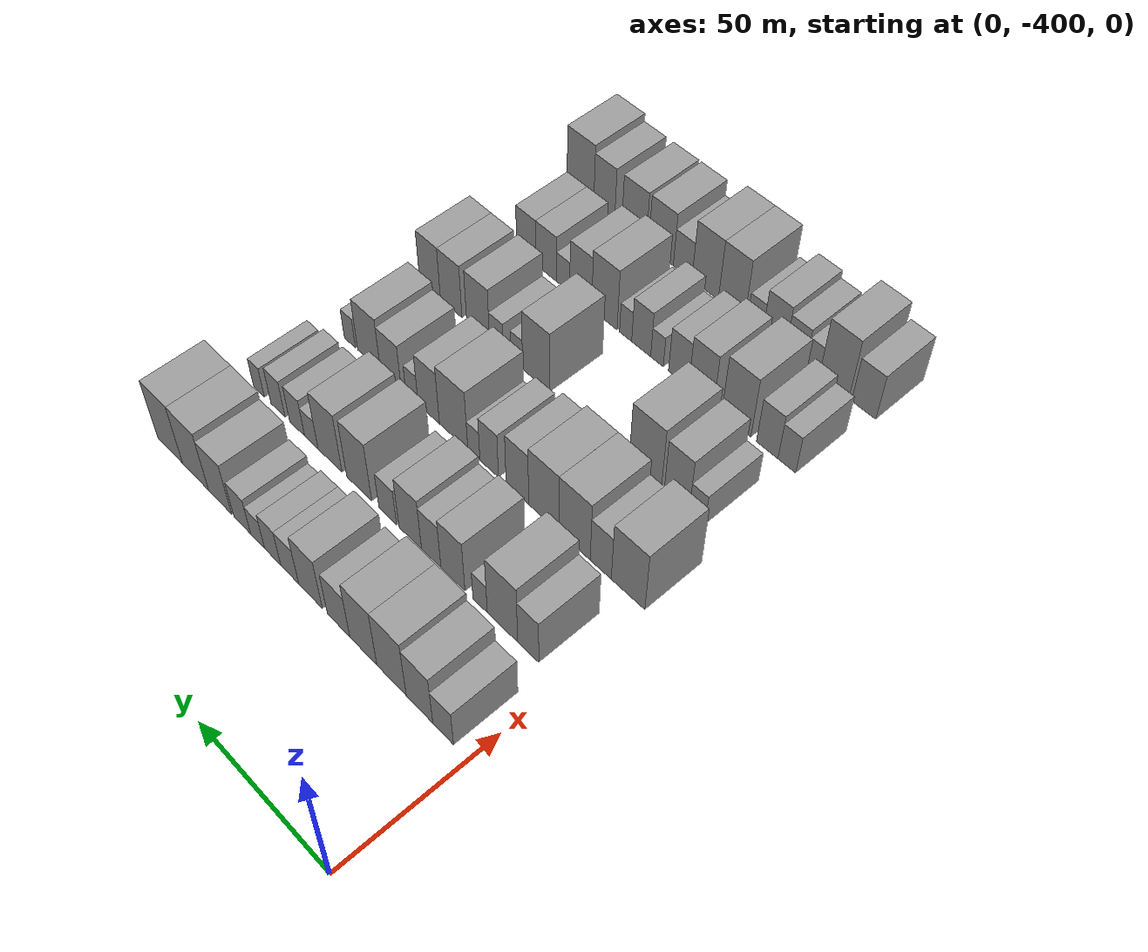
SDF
<sdf version="1.6">
 <world name="default">
  <model name="building_13">
   <static>1</static>
   <pose>50.0000 -391.0221 0 0.000000 0.000000 0.000000</pose>
   <link name="link">
    <pose>0 0 7.50 0 0 0</pose>
    <collision name="collision"><geometry><box><size>20.0000 7.4388 15.0000</size></box></geometry></collision>
    <visual name="visual">
     <cast_shadows>0</cast_shadows>
     <geometry><box><size>20.0000 7.4388 15.0000</size></box></geometry>
     <material>
      <script>
       <uri>model://grey_wall/materials/scripts</uri>
       <uri>model://grey_wall/materials/textures</uri>
       <name>vrc/grey_wall</name>
      </script>
     </material>
    </visual>
   </link>
  </model>
  <model name="building_14">
   <static>1</static>
   <pose>50.0000 -382.4483 0 0.000000 0.000000 0.000000</pose>
   <link name="link">
    <pose>0 0 10.50 0 0 0</pose>
    <collision name="collision"><geometry><box><size>20.0000 9.7088 21.0000</size></box></geometry></collision>
    <visual name="visual">
     <cast_shadows>0</cast_shadows>
     <geometry><box><size>20.0000 9.7088 21.0000</size></box></geometry>
     <material>
      <script>
       <uri>model://grey_wall/materials/scripts</uri>
       <uri>model://grey_wall/materials/textures</uri>
       <name>vrc/grey_wall</name>
      </script>
     </material>
    </visual>
   </link>
  </model>
  <model name="building_15">
   <static>1</static>
   <pose>50.0000 -372.0800 0 0.000000 0.000000 0.000000</pose>
   <link name="link">
    <pose>0 0 12.00 0 0 0</pose>
    <collision name="collision"><geometry><box><size>20.0000 11.0279 24.0000</size></box></geometry></collision>
    <visual name="visual">
     <cast_shadows>0</cast_shadows>
     <geometry><box><size>20.0000 11.0279 24.0000</size></box></geometry>
     <material>
      <script>
       <uri>model://grey_wall/materials/scripts</uri>
       <uri>model://grey_wall/materials/textures</uri>
       <name>vrc/grey_wall</name>
      </script>
     </material>
    </visual>
   </link>
  </model>
  <model name="building_16">
   <static>1</static>
   <pose>50.0000 -361.3567 0 0.000000 0.000000 0.000000</pose>
   <link name="link">
    <pose>0 0 12.00 0 0 0</pose>
    <collision name="collision"><geometry><box><size>20.0000 10.4185 24.0000</size></box></geometry></collision>
    <visual name="visual">
     <cast_shadows>0</cast_shadows>
     <geometry><box><size>20.0000 10.4185 24.0000</size></box></geometry>
     <material>
      <script>
       <uri>model://grey_wall/materials/scripts</uri>
       <uri>model://grey_wall/materials/textures</uri>
       <name>vrc/grey_wall</name>
      </script>
     </material>
    </visual>
   </link>
  </model>
  <model name="building_17">
   <static>1</static>
   <pose>50.0000 -351.7194 0 0.000000 0.000000 0.000000</pose>
   <link name="link">
    <pose>0 0 9.00 0 0 0</pose>
    <collision name="collision"><geometry><box><size>20.0000 8.8561 18.0000</size></box></geometry></collision>
    <visual name="visual">
     <cast_shadows>0</cast_shadows>
     <geometry><box><size>20.0000 8.8561 18.0000</size></box></geometry>
     <material>
      <script>
       <uri>model://grey_wall/materials/scripts</uri>
       <uri>model://grey_wall/materials/textures</uri>
       <name>vrc/grey_wall</name>
      </script>
     </material>
    </visual>
   </link>
  </model>
  <model name="building_18">
   <static>1</static>
   <pose>50.0000 -340.5252 0 0.000000 0.000000 0.000000</pose>
   <link name="link">
    <pose>0 0 10.50 0 0 0</pose>
    <collision name="collision"><geometry><box><size>20.0000 9.5323 21.0000</size></box></geometry></collision>
    <visual name="visual">
     <cast_shadows>0</cast_shadows>
     <geometry><box><size>20.0000 9.5323 21.0000</size></box></geometry>
     <material>
      <script>
       <uri>model://grey_wall/materials/scripts</uri>
       <uri>model://grey_wall/materials/textures</uri>
       <name>vrc/grey_wall</name>
      </script>
     </material>
    </visual>
   </link>
  </model>
  <model name="building_19">
   <static>1</static>
   <pose>50.0000 -332.0643 0 0.000000 0.000000 0.000000</pose>
   <link name="link">
    <pose>0 0 7.50 0 0 0</pose>
    <collision name="collision"><geometry><box><size>20.0000 7.3896 15.0000</size></box></geometry></collision>
    <visual name="visual">
     <cast_shadows>0</cast_shadows>
     <geometry><box><size>20.0000 7.3896 15.0000</size></box></geometry>
     <material>
      <script>
       <uri>model://grey_wall/materials/scripts</uri>
       <uri>model://grey_wall/materials/textures</uri>
       <name>vrc/grey_wall</name>
      </script>
     </material>
    </visual>
   </link>
  </model>
  <model name="building_20">
   <static>1</static>
   <pose>50.0000 -324.9953 0 0.000000 0.000000 0.000000</pose>
   <link name="link">
    <pose>0 0 7.50 0 0 0</pose>
    <collision name="collision"><geometry><box><size>20.0000 6.7483 15.0000</size></box></geometry></collision>
    <visual name="visual">
     <cast_shadows>0</cast_shadows>
     <geometry><box><size>20.0000 6.7483 15.0000</size></box></geometry>
     <material>
      <script>
       <uri>model://grey_wall/materials/scripts</uri>
       <uri>model://grey_wall/materials/textures</uri>
       <name>vrc/grey_wall</name>
      </script>
     </material>
    </visual>
   </link>
  </model>
  <model name="building_21">
   <static>1</static>
   <pose>50.0000 -318.6482 0 0.000000 0.000000 0.000000</pose>
   <link name="link">
    <pose>0 0 6.00 0 0 0</pose>
    <collision name="collision"><geometry><box><size>20.0000 5.9460 12.0000</size></box></geometry></collision>
    <visual name="visual">
     <cast_shadows>0</cast_shadows>
     <geometry><box><size>20.0000 5.9460 12.0000</size></box></geometry>
     <material>
      <script>
       <uri>model://grey_wall/materials/scripts</uri>
       <uri>model://grey_wall/materials/textures</uri>
       <name>vrc/grey_wall</name>
      </script>
     </material>
    </visual>
   </link>
  </model>
  <model name="building_22">
   <static>1</static>
   <pose>50.0000 -312.0766 0 0.000000 0.000000 0.000000</pose>
   <link name="link">
    <pose>0 0 7.50 0 0 0</pose>
    <collision name="collision"><geometry><box><size>20.0000 7.1972 15.0000</size></box></geometry></collision>
    <visual name="visual">
     <cast_shadows>0</cast_shadows>
     <geometry><box><size>20.0000 7.1972 15.0000</size></box></geometry>
     <material>
      <script>
       <uri>model://grey_wall/materials/scripts</uri>
       <uri>model://grey_wall/materials/textures</uri>
       <name>vrc/grey_wall</name>
      </script>
     </material>
    </visual>
   </link>
  </model>
  <model name="building_23">
   <static>1</static>
   <pose>50.0000 -302.3935 0 0.000000 0.000000 0.000000</pose>
   <link name="link">
    <pose>0 0 10.50 0 0 0</pose>
    <collision name="collision"><geometry><box><size>20.0000 10.1690 21.0000</size></box></geometry></collision>
    <visual name="visual">
     <cast_shadows>0</cast_shadows>
     <geometry><box><size>20.0000 10.1690 21.0000</size></box></geometry>
     <material>
      <script>
       <uri>model://grey_wall/materials/scripts</uri>
       <uri>model://grey_wall/materials/textures</uri>
       <name>vrc/grey_wall</name>
      </script>
     </material>
    </visual>
   </link>
  </model>
  <model name="building_24">
   <static>1</static>
   <pose>50.0000 -291.4551 0 0.000000 0.000000 0.000000</pose>
   <link name="link">
    <pose>0 0 12.00 0 0 0</pose>
    <collision name="collision"><geometry><box><size>20.0000 11.7078 24.0000</size></box></geometry></collision>
    <visual name="visual">
     <cast_shadows>0</cast_shadows>
     <geometry><box><size>20.0000 11.7078 24.0000</size></box></geometry>
     <material>
      <script>
       <uri>model://grey_wall/materials/scripts</uri>
       <uri>model://grey_wall/materials/textures</uri>
       <name>vrc/grey_wall</name>
      </script>
     </material>
    </visual>
   </link>
  </model>
  <model name="building_25">
   <static>1</static>
   <pose>50.0000 -279.8147 0 0.000000 0.000000 0.000000</pose>
   <link name="link">
    <pose>0 0 12.00 0 0 0</pose>
    <collision name="collision"><geometry><box><size>20.0000 11.5730 24.0000</size></box></geometry></collision>
    <visual name="visual">
     <cast_shadows>0</cast_shadows>
     <geometry><box><size>20.0000 11.5730 24.0000</size></box></geometry>
     <material>
      <script>
       <uri>model://grey_wall/materials/scripts</uri>
       <uri>model://grey_wall/materials/textures</uri>
       <name>vrc/grey_wall</name>
      </script>
     </material>
    </visual>
   </link>
  </model>
  <model name="building_130">
   <static>1</static>
   <pose>79.0000 -388.4443 0 0.000000 0.000000 0.000000</pose>
   <link name="link">
    <pose>0 0 9.00 0 0 0</pose>
    <collision name="collision"><geometry><box><size>20.0000 7.5946 18.0000</size></box></geometry></collision>
    <visual name="visual">
     <cast_shadows>0</cast_shadows>
     <geometry><box><size>20.0000 7.5946 18.0000</size></box></geometry>
     <material>
      <script>
       <uri>model://grey_wall/materials/scripts</uri>
       <uri>model://grey_wall/materials/textures</uri>
       <name>vrc/grey_wall</name>
      </script>
     </material>
    </visual>
   </link>
  </model>
  <model name="building_131">
   <static>1</static>
   <pose>79.0000 -379.1052 0 0.000000 0.000000 0.000000</pose>
   <link name="link">
    <pose>0 0 12.00 0 0 0</pose>
    <collision name="collision"><geometry><box><size>20.0000 11.0837 24.0000</size></box></geometry></collision>
    <visual name="visual">
     <cast_shadows>0</cast_shadows>
     <geometry><box><size>20.0000 11.0837 24.0000</size></box></geometry>
     <material>
      <script>
       <uri>model://grey_wall/materials/scripts</uri>
       <uri>model://grey_wall/materials/textures</uri>
       <name>vrc/grey_wall</name>
      </script>
     </material>
    </visual>
   </link>
  </model>
  <model name="building_132">
   <static>1</static>
   <pose>79.0000 -370.8885 0 0.000000 0.000000 0.000000</pose>
   <link name="link">
    <pose>0 0 6.00 0 0 0</pose>
    <collision name="collision"><geometry><box><size>20.0000 5.3498 12.0000</size></box></geometry></collision>
    <visual name="visual">
     <cast_shadows>0</cast_shadows>
     <geometry><box><size>20.0000 5.3498 12.0000</size></box></geometry>
     <material>
      <script>
       <uri>model://grey_wall/materials/scripts</uri>
       <uri>model://grey_wall/materials/textures</uri>
       <name>vrc/grey_wall</name>
      </script>
     </material>
    </visual>
   </link>
  </model>
  <model name="building_133">
   <static>1</static>
   <pose>79.0000 -360.6384 0 0.000000 0.000000 0.000000</pose>
   <link name="link">
    <pose>0 0 10.50 0 0 0</pose>
    <collision name="collision"><geometry><box><size>20.0000 9.1504 21.0000</size></box></geometry></collision>
    <visual name="visual">
     <cast_shadows>0</cast_shadows>
     <geometry><box><size>20.0000 9.1504 21.0000</size></box></geometry>
     <material>
      <script>
       <uri>model://grey_wall/materials/scripts</uri>
       <uri>model://grey_wall/materials/textures</uri>
       <name>vrc/grey_wall</name>
      </script>
     </material>
    </visual>
   </link>
  </model>
  <model name="building_134">
   <static>1</static>
   <pose>79.0000 -352.2799 0 0.000000 0.000000 0.000000</pose>
   <link name="link">
    <pose>0 0 9.00 0 0 0</pose>
    <collision name="collision"><geometry><box><size>20.0000 7.5666 18.0000</size></box></geometry></collision>
    <visual name="visual">
     <cast_shadows>0</cast_shadows>
     <geometry><box><size>20.0000 7.5666 18.0000</size></box></geometry>
     <material>
      <script>
       <uri>model://grey_wall/materials/scripts</uri>
       <uri>model://grey_wall/materials/textures</uri>
       <name>vrc/grey_wall</name>
      </script>
     </material>
    </visual>
   </link>
  </model>
  <model name="building_135">
   <static>1</static>
   <pose>79.0000 -344.0554 0 0.000000 0.000000 0.000000</pose>
   <link name="link">
    <pose>0 0 10.50 0 0 0</pose>
    <collision name="collision"><geometry><box><size>20.0000 8.8823 21.0000</size></box></geometry></collision>
    <visual name="visual">
     <cast_shadows>0</cast_shadows>
     <geometry><box><size>20.0000 8.8823 21.0000</size></box></geometry>
     <material>
      <script>
       <uri>model://grey_wall/materials/scripts</uri>
       <uri>model://grey_wall/materials/textures</uri>
       <name>vrc/grey_wall</name>
      </script>
     </material>
    </visual>
   </link>
  </model>
  <model name="building_136">
   <static>1</static>
   <pose>79.0000 -335.0588 0 0.000000 0.000000 0.000000</pose>
   <link name="link">
    <pose>0 0 7.50 0 0 0</pose>
    <collision name="collision"><geometry><box><size>20.0000 7.1111 15.0000</size></box></geometry></collision>
    <visual name="visual">
     <cast_shadows>0</cast_shadows>
     <geometry><box><size>20.0000 7.1111 15.0000</size></box></geometry>
     <material>
      <script>
       <uri>model://grey_wall/materials/scripts</uri>
       <uri>model://grey_wall/materials/textures</uri>
       <name>vrc/grey_wall</name>
      </script>
     </material>
    </visual>
   </link>
  </model>
  <model name="building_137">
   <static>1</static>
   <pose>79.0000 -323.3346 0 0.000000 0.000000 0.000000</pose>
   <link name="link">
    <pose>0 0 12.00 0 0 0</pose>
    <collision name="collision"><geometry><box><size>20.0000 10.3372 24.0000</size></box></geometry></collision>
    <visual name="visual">
     <cast_shadows>0</cast_shadows>
     <geometry><box><size>20.0000 10.3372 24.0000</size></box></geometry>
     <material>
      <script>
       <uri>model://grey_wall/materials/scripts</uri>
       <uri>model://grey_wall/materials/textures</uri>
       <name>vrc/grey_wall</name>
      </script>
     </material>
    </visual>
   </link>
  </model>
  <model name="building_138">
   <static>1</static>
   <pose>79.0000 -311.0484 0 0.000000 0.000000 0.000000</pose>
   <link name="link">
    <pose>0 0 12.00 0 0 0</pose>
    <collision name="collision"><geometry><box><size>20.0000 10.2352 24.0000</size></box></geometry></collision>
    <visual name="visual">
     <cast_shadows>0</cast_shadows>
     <geometry><box><size>20.0000 10.2352 24.0000</size></box></geometry>
     <material>
      <script>
       <uri>model://grey_wall/materials/scripts</uri>
       <uri>model://grey_wall/materials/textures</uri>
       <name>vrc/grey_wall</name>
      </script>
     </material>
    </visual>
   </link>
  </model>
  <model name="building_139">
   <static>1</static>
   <pose>79.0000 -303.0020 0 0.000000 0.000000 0.000000</pose>
   <link name="link">
    <pose>0 0 6.00 0 0 0</pose>
    <collision name="collision"><geometry><box><size>20.0000 5.8576 12.0000</size></box></geometry></collision>
    <visual name="visual">
     <cast_shadows>0</cast_shadows>
     <geometry><box><size>20.0000 5.8576 12.0000</size></box></geometry>
     <material>
      <script>
       <uri>model://grey_wall/materials/scripts</uri>
       <uri>model://grey_wall/materials/textures</uri>
       <name>vrc/grey_wall</name>
      </script>
     </material>
    </visual>
   </link>
  </model>
  <model name="building_140">
   <static>1</static>
   <pose>79.0000 -296.7971 0 0.000000 0.000000 0.000000</pose>
   <link name="link">
    <pose>0 0 7.50 0 0 0</pose>
    <collision name="collision"><geometry><box><size>20.0000 6.5523 15.0000</size></box></geometry></collision>
    <visual name="visual">
     <cast_shadows>0</cast_shadows>
     <geometry><box><size>20.0000 6.5523 15.0000</size></box></geometry>
     <material>
      <script>
       <uri>model://grey_wall/materials/scripts</uri>
       <uri>model://grey_wall/materials/textures</uri>
       <name>vrc/grey_wall</name>
      </script>
     </material>
    </visual>
   </link>
  </model>
  <model name="building_141">
   <static>1</static>
   <pose>79.0000 -288.3444 0 0.000000 0.000000 0.000000</pose>
   <link name="link">
    <pose>0 0 7.50 0 0 0</pose>
    <collision name="collision"><geometry><box><size>20.0000 6.3531 15.0000</size></box></geometry></collision>
    <visual name="visual">
     <cast_shadows>0</cast_shadows>
     <geometry><box><size>20.0000 6.3531 15.0000</size></box></geometry>
     <material>
      <script>
       <uri>model://grey_wall/materials/scripts</uri>
       <uri>model://grey_wall/materials/textures</uri>
       <name>vrc/grey_wall</name>
      </script>
     </material>
    </visual>
   </link>
  </model>
  <model name="building_142">
   <static>1</static>
   <pose>79.0000 -279.7513 0 0.000000 0.000000 0.000000</pose>
   <link name="link">
    <pose>0 0 6.00 0 0 0</pose>
    <collision name="collision"><geometry><box><size>20.0000 4.8330 12.0000</size></box></geometry></collision>
    <visual name="visual">
     <cast_shadows>0</cast_shadows>
     <geometry><box><size>20.0000 4.8330 12.0000</size></box></geometry>
     <material>
      <script>
       <uri>model://grey_wall/materials/scripts</uri>
       <uri>model://grey_wall/materials/textures</uri>
       <name>vrc/grey_wall</name>
      </script>
     </material>
    </visual>
   </link>
  </model>
  <model name="building_243">
   <static>1</static>
   <pose>108.0000 -393.1576 0 0.000000 0.000000 0.000000</pose>
   <link name="link">
    <pose>0 0 12.00 0 0 0</pose>
    <collision name="collision"><geometry><box><size>20.0000 11.8551 24.0000</size></box></geometry></collision>
    <visual name="visual">
     <cast_shadows>0</cast_shadows>
     <geometry><box><size>20.0000 11.8551 24.0000</size></box></geometry>
     <material>
      <script>
       <uri>model://grey_wall/materials/scripts</uri>
       <uri>model://grey_wall/materials/textures</uri>
       <name>vrc/grey_wall</name>
      </script>
     </material>
    </visual>
   </link>
  </model>
  <model name="building_244">
   <static>1</static>
   <pose>108.0000 -383.4265 0 0.000000 0.000000 0.000000</pose>
   <link name="link">
    <pose>0 0 9.00 0 0 0</pose>
    <collision name="collision"><geometry><box><size>20.0000 7.6070 18.0000</size></box></geometry></collision>
    <visual name="visual">
     <cast_shadows>0</cast_shadows>
     <geometry><box><size>20.0000 7.6070 18.0000</size></box></geometry>
     <material>
      <script>
       <uri>model://grey_wall/materials/scripts</uri>
       <uri>model://grey_wall/materials/textures</uri>
       <name>vrc/grey_wall</name>
      </script>
     </material>
    </visual>
   </link>
  </model>
  <model name="building_245">
   <static>1</static>
   <pose>108.0000 -373.8133 0 0.000000 0.000000 0.000000</pose>
   <link name="link">
    <pose>0 0 12.00 0 0 0</pose>
    <collision name="collision"><geometry><box><size>20.0000 11.6195 24.0000</size></box></geometry></collision>
    <visual name="visual">
     <cast_shadows>0</cast_shadows>
     <geometry><box><size>20.0000 11.6195 24.0000</size></box></geometry>
     <material>
      <script>
       <uri>model://grey_wall/materials/scripts</uri>
       <uri>model://grey_wall/materials/textures</uri>
       <name>vrc/grey_wall</name>
      </script>
     </material>
    </visual>
   </link>
  </model>
  <model name="building_246">
   <static>1</static>
   <pose>108.0000 -362.3462 0 0.000000 0.000000 0.000000</pose>
   <link name="link">
    <pose>0 0 12.00 0 0 0</pose>
    <collision name="collision"><geometry><box><size>20.0000 11.3146 24.0000</size></box></geometry></collision>
    <visual name="visual">
     <cast_shadows>0</cast_shadows>
     <geometry><box><size>20.0000 11.3146 24.0000</size></box></geometry>
     <material>
      <script>
       <uri>model://grey_wall/materials/scripts</uri>
       <uri>model://grey_wall/materials/textures</uri>
       <name>vrc/grey_wall</name>
      </script>
     </material>
    </visual>
   </link>
  </model>
  <model name="building_247">
   <static>1</static>
   <pose>108.0000 -352.3425 0 0.000000 0.000000 0.000000</pose>
   <link name="link">
    <pose>0 0 10.50 0 0 0</pose>
    <collision name="collision"><geometry><box><size>20.0000 8.6928 21.0000</size></box></geometry></collision>
    <visual name="visual">
     <cast_shadows>0</cast_shadows>
     <geometry><box><size>20.0000 8.6928 21.0000</size></box></geometry>
     <material>
      <script>
       <uri>model://grey_wall/materials/scripts</uri>
       <uri>model://grey_wall/materials/textures</uri>
       <name>vrc/grey_wall</name>
      </script>
     </material>
    </visual>
   </link>
  </model>
  <model name="building_248">
   <static>1</static>
   <pose>108.0000 -341.3322 0 0.000000 0.000000 0.000000</pose>
   <link name="link">
    <pose>0 0 9.00 0 0 0</pose>
    <collision name="collision"><geometry><box><size>20.0000 7.3279 18.0000</size></box></geometry></collision>
    <visual name="visual">
     <cast_shadows>0</cast_shadows>
     <geometry><box><size>20.0000 7.3279 18.0000</size></box></geometry>
     <material>
      <script>
       <uri>model://grey_wall/materials/scripts</uri>
       <uri>model://grey_wall/materials/textures</uri>
       <name>vrc/grey_wall</name>
      </script>
     </material>
    </visual>
   </link>
  </model>
  <model name="building_249">
   <static>1</static>
   <pose>108.0000 -335.2415 0 0.000000 0.000000 0.000000</pose>
   <link name="link">
    <pose>0 0 6.00 0 0 0</pose>
    <collision name="collision"><geometry><box><size>20.0000 4.8535 12.0000</size></box></geometry></collision>
    <visual name="visual">
     <cast_shadows>0</cast_shadows>
     <geometry><box><size>20.0000 4.8535 12.0000</size></box></geometry>
     <material>
      <script>
       <uri>model://grey_wall/materials/scripts</uri>
       <uri>model://grey_wall/materials/textures</uri>
       <name>vrc/grey_wall</name>
      </script>
     </material>
    </visual>
   </link>
  </model>
  <model name="building_250">
   <static>1</static>
   <pose>108.0000 -327.0303 0 0.000000 0.000000 0.000000</pose>
   <link name="link">
    <pose>0 0 12.00 0 0 0</pose>
    <collision name="collision"><geometry><box><size>20.0000 11.5688 24.0000</size></box></geometry></collision>
    <visual name="visual">
     <cast_shadows>0</cast_shadows>
     <geometry><box><size>20.0000 11.5688 24.0000</size></box></geometry>
     <material>
      <script>
       <uri>model://grey_wall/materials/scripts</uri>
       <uri>model://grey_wall/materials/textures</uri>
       <name>vrc/grey_wall</name>
      </script>
     </material>
    </visual>
   </link>
  </model>
  <model name="building_251">
   <static>1</static>
   <pose>108.0000 -316.8355 0 0.000000 0.000000 0.000000</pose>
   <link name="link">
    <pose>0 0 10.50 0 0 0</pose>
    <collision name="collision"><geometry><box><size>20.0000 8.8208 21.0000</size></box></geometry></collision>
    <visual name="visual">
     <cast_shadows>0</cast_shadows>
     <geometry><box><size>20.0000 8.8208 21.0000</size></box></geometry>
     <material>
      <script>
       <uri>model://grey_wall/materials/scripts</uri>
       <uri>model://grey_wall/materials/textures</uri>
       <name>vrc/grey_wall</name>
      </script>
     </material>
    </visual>
   </link>
  </model>
  <model name="building_252">
   <static>1</static>
   <pose>108.0000 -309.8223 0 0.000000 0.000000 0.000000</pose>
   <link name="link">
    <pose>0 0 6.00 0 0 0</pose>
    <collision name="collision"><geometry><box><size>20.0000 5.2057 12.0000</size></box></geometry></collision>
    <visual name="visual">
     <cast_shadows>0</cast_shadows>
     <geometry><box><size>20.0000 5.2057 12.0000</size></box></geometry>
     <material>
      <script>
       <uri>model://grey_wall/materials/scripts</uri>
       <uri>model://grey_wall/materials/textures</uri>
       <name>vrc/grey_wall</name>
      </script>
     </material>
    </visual>
   </link>
  </model>
  <model name="building_253">
   <static>1</static>
   <pose>108.0000 -300.7276 0 0.000000 0.000000 0.000000</pose>
   <link name="link">
    <pose>0 0 9.00 0 0 0</pose>
    <collision name="collision"><geometry><box><size>20.0000 8.9836 18.0000</size></box></geometry></collision>
    <visual name="visual">
     <cast_shadows>0</cast_shadows>
     <geometry><box><size>20.0000 8.9836 18.0000</size></box></geometry>
     <material>
      <script>
       <uri>model://grey_wall/materials/scripts</uri>
       <uri>model://grey_wall/materials/textures</uri>
       <name>vrc/grey_wall</name>
      </script>
     </material>
    </visual>
   </link>
  </model>
  <model name="building_254">
   <static>1</static>
   <pose>108.0000 -291.2330 0 0.000000 0.000000 0.000000</pose>
   <link name="link">
    <pose>0 0 10.50 0 0 0</pose>
    <collision name="collision"><geometry><box><size>20.0000 10.0057 21.0000</size></box></geometry></collision>
    <visual name="visual">
     <cast_shadows>0</cast_shadows>
     <geometry><box><size>20.0000 10.0057 21.0000</size></box></geometry>
     <material>
      <script>
       <uri>model://grey_wall/materials/scripts</uri>
       <uri>model://grey_wall/materials/textures</uri>
       <name>vrc/grey_wall</name>
      </script>
     </material>
    </visual>
   </link>
  </model>
  <model name="building_255">
   <static>1</static>
   <pose>108.0000 -282.7687 0 0.000000 0.000000 0.000000</pose>
   <link name="link">
    <pose>0 0 6.00 0 0 0</pose>
    <collision name="collision"><geometry><box><size>20.0000 4.9228 12.0000</size></box></geometry></collision>
    <visual name="visual">
     <cast_shadows>0</cast_shadows>
     <geometry><box><size>20.0000 4.9228 12.0000</size></box></geometry>
     <material>
      <script>
       <uri>model://grey_wall/materials/scripts</uri>
       <uri>model://grey_wall/materials/textures</uri>
       <name>vrc/grey_wall</name>
      </script>
     </material>
    </visual>
   </link>
  </model>
  <model name="building_357">
   <static>1</static>
   <pose>137.0000 -388.8164 0 0.000000 0.000000 0.000000</pose>
   <link name="link">
    <pose>0 0 6.00 0 0 0</pose>
    <collision name="collision"><geometry><box><size>20.0000 5.6521 12.0000</size></box></geometry></collision>
    <visual name="visual">
     <cast_shadows>0</cast_shadows>
     <geometry><box><size>20.0000 5.6521 12.0000</size></box></geometry>
     <material>
      <script>
       <uri>model://grey_wall/materials/scripts</uri>
       <uri>model://grey_wall/materials/textures</uri>
       <name>vrc/grey_wall</name>
      </script>
     </material>
    </visual>
   </link>
  </model>
  <model name="building_358">
   <static>1</static>
   <pose>137.0000 -381.4883 0 0.000000 0.000000 0.000000</pose>
   <link name="link">
    <pose>0 0 10.50 0 0 0</pose>
    <collision name="collision"><geometry><box><size>20.0000 9.0042 21.0000</size></box></geometry></collision>
    <visual name="visual">
     <cast_shadows>0</cast_shadows>
     <geometry><box><size>20.0000 9.0042 21.0000</size></box></geometry>
     <material>
      <script>
       <uri>model://grey_wall/materials/scripts</uri>
       <uri>model://grey_wall/materials/textures</uri>
       <name>vrc/grey_wall</name>
      </script>
     </material>
    </visual>
   </link>
  </model>
  <model name="building_359">
   <static>1</static>
   <pose>137.0000 -370.0218 0 0.000000 0.000000 0.000000</pose>
   <link name="link">
    <pose>0 0 12.00 0 0 0</pose>
    <collision name="collision"><geometry><box><size>20.0000 11.9287 24.0000</size></box></geometry></collision>
    <visual name="visual">
     <cast_shadows>0</cast_shadows>
     <geometry><box><size>20.0000 11.9287 24.0000</size></box></geometry>
     <material>
      <script>
       <uri>model://grey_wall/materials/scripts</uri>
       <uri>model://grey_wall/materials/textures</uri>
       <name>vrc/grey_wall</name>
      </script>
     </material>
    </visual>
   </link>
  </model>
  <model name="building_360">
   <static>1</static>
   <pose>137.0000 -327.7165 0 0.000000 0.000000 0.000000</pose>
   <link name="link">
    <pose>0 0 12.00 0 0 0</pose>
    <collision name="collision"><geometry><box><size>20.0000 10.8940 24.0000</size></box></geometry></collision>
    <visual name="visual">
     <cast_shadows>0</cast_shadows>
     <geometry><box><size>20.0000 10.8940 24.0000</size></box></geometry>
     <material>
      <script>
       <uri>model://grey_wall/materials/scripts</uri>
       <uri>model://grey_wall/materials/textures</uri>
       <name>vrc/grey_wall</name>
      </script>
     </material>
    </visual>
   </link>
  </model>
  <model name="building_361">
   <static>1</static>
   <pose>137.0000 -319.8315 0 0.000000 0.000000 0.000000</pose>
   <link name="link">
    <pose>0 0 6.00 0 0 0</pose>
    <collision name="collision"><geometry><box><size>20.0000 4.8759 12.0000</size></box></geometry></collision>
    <visual name="visual">
     <cast_shadows>0</cast_shadows>
     <geometry><box><size>20.0000 4.8759 12.0000</size></box></geometry>
     <material>
      <script>
       <uri>model://grey_wall/materials/scripts</uri>
       <uri>model://grey_wall/materials/textures</uri>
       <name>vrc/grey_wall</name>
      </script>
     </material>
    </visual>
   </link>
  </model>
  <model name="building_362">
   <static>1</static>
   <pose>137.0000 -311.4621 0 0.000000 0.000000 0.000000</pose>
   <link name="link">
    <pose>0 0 6.00 0 0 0</pose>
    <collision name="collision"><geometry><box><size>20.0000 5.8629 12.0000</size></box></geometry></collision>
    <visual name="visual">
     <cast_shadows>0</cast_shadows>
     <geometry><box><size>20.0000 5.8629 12.0000</size></box></geometry>
     <material>
      <script>
       <uri>model://grey_wall/materials/scripts</uri>
       <uri>model://grey_wall/materials/textures</uri>
       <name>vrc/grey_wall</name>
      </script>
     </material>
    </visual>
   </link>
  </model>
  <model name="building_363">
   <static>1</static>
   <pose>137.0000 -303.6726 0 0.000000 0.000000 0.000000</pose>
   <link name="link">
    <pose>0 0 10.50 0 0 0</pose>
    <collision name="collision"><geometry><box><size>20.0000 9.7161 21.0000</size></box></geometry></collision>
    <visual name="visual">
     <cast_shadows>0</cast_shadows>
     <geometry><box><size>20.0000 9.7161 21.0000</size></box></geometry>
     <material>
      <script>
       <uri>model://grey_wall/materials/scripts</uri>
       <uri>model://grey_wall/materials/textures</uri>
       <name>vrc/grey_wall</name>
      </script>
     </material>
    </visual>
   </link>
  </model>
  <model name="building_364">
   <static>1</static>
   <pose>137.0000 -292.1297 0 0.000000 0.000000 0.000000</pose>
   <link name="link">
    <pose>0 0 10.50 0 0 0</pose>
    <collision name="collision"><geometry><box><size>20.0000 9.3698 21.0000</size></box></geometry></collision>
    <visual name="visual">
     <cast_shadows>0</cast_shadows>
     <geometry><box><size>20.0000 9.3698 21.0000</size></box></geometry>
     <material>
      <script>
       <uri>model://grey_wall/materials/scripts</uri>
       <uri>model://grey_wall/materials/textures</uri>
       <name>vrc/grey_wall</name>
      </script>
     </material>
    </visual>
   </link>
  </model>
  <model name="building_365">
   <static>1</static>
   <pose>137.0000 -282.8979 0 0.000000 0.000000 0.000000</pose>
   <link name="link">
    <pose>0 0 10.50 0 0 0</pose>
    <collision name="collision"><geometry><box><size>20.0000 9.0937 21.0000</size></box></geometry></collision>
    <visual name="visual">
     <cast_shadows>0</cast_shadows>
     <geometry><box><size>20.0000 9.0937 21.0000</size></box></geometry>
     <material>
      <script>
       <uri>model://grey_wall/materials/scripts</uri>
       <uri>model://grey_wall/materials/textures</uri>
       <name>vrc/grey_wall</name>
      </script>
     </material>
    </visual>
   </link>
  </model>
  <model name="building_463">
   <static>1</static>
   <pose>166.0000 -393.4017 0 0.000000 0.000000 0.000000</pose>
   <link name="link">
    <pose>0 0 7.50 0 0 0</pose>
    <collision name="collision"><geometry><box><size>20.0000 6.2264 15.0000</size></box></geometry></collision>
    <visual name="visual">
     <cast_shadows>0</cast_shadows>
     <geometry><box><size>20.0000 6.2264 15.0000</size></box></geometry>
     <material>
      <script>
       <uri>model://grey_wall/materials/scripts</uri>
       <uri>model://grey_wall/materials/textures</uri>
       <name>vrc/grey_wall</name>
      </script>
     </material>
    </visual>
   </link>
  </model>
  <model name="building_464">
   <static>1</static>
   <pose>166.0000 -386.4477 0 0.000000 0.000000 0.000000</pose>
   <link name="link">
    <pose>0 0 9.00 0 0 0</pose>
    <collision name="collision"><geometry><box><size>20.0000 7.6815 18.0000</size></box></geometry></collision>
    <visual name="visual">
     <cast_shadows>0</cast_shadows>
     <geometry><box><size>20.0000 7.6815 18.0000</size></box></geometry>
     <material>
      <script>
       <uri>model://grey_wall/materials/scripts</uri>
       <uri>model://grey_wall/materials/textures</uri>
       <name>vrc/grey_wall</name>
      </script>
     </material>
    </visual>
   </link>
  </model>
  <model name="building_465">
   <static>1</static>
   <pose>166.0000 -375.2529 0 0.000000 0.000000 0.000000</pose>
   <link name="link">
    <pose>0 0 12.00 0 0 0</pose>
    <collision name="collision"><geometry><box><size>20.0000 10.7082 24.0000</size></box></geometry></collision>
    <visual name="visual">
     <cast_shadows>0</cast_shadows>
     <geometry><box><size>20.0000 10.7082 24.0000</size></box></geometry>
     <material>
      <script>
       <uri>model://grey_wall/materials/scripts</uri>
       <uri>model://grey_wall/materials/textures</uri>
       <name>vrc/grey_wall</name>
      </script>
     </material>
    </visual>
   </link>
  </model>
  <model name="building_466">
   <static>1</static>
   <pose>166.0000 -362.2132 0 0.000000 0.000000 0.000000</pose>
   <link name="link">
    <pose>0 0 10.50 0 0 0</pose>
    <collision name="collision"><geometry><box><size>20.0000 9.3711 21.0000</size></box></geometry></collision>
    <visual name="visual">
     <cast_shadows>0</cast_shadows>
     <geometry><box><size>20.0000 9.3711 21.0000</size></box></geometry>
     <material>
      <script>
       <uri>model://grey_wall/materials/scripts</uri>
       <uri>model://grey_wall/materials/textures</uri>
       <name>vrc/grey_wall</name>
      </script>
     </material>
    </visual>
   </link>
  </model>
  <model name="building_467">
   <static>1</static>
   <pose>166.0000 -353.6832 0 0.000000 0.000000 0.000000</pose>
   <link name="link">
    <pose>0 0 9.00 0 0 0</pose>
    <collision name="collision"><geometry><box><size>20.0000 7.6889 18.0000</size></box></geometry></collision>
    <visual name="visual">
     <cast_shadows>0</cast_shadows>
     <geometry><box><size>20.0000 7.6889 18.0000</size></box></geometry>
     <material>
      <script>
       <uri>model://grey_wall/materials/scripts</uri>
       <uri>model://grey_wall/materials/textures</uri>
       <name>vrc/grey_wall</name>
      </script>
     </material>
    </visual>
   </link>
  </model>
  <model name="building_468">
   <static>1</static>
   <pose>166.0000 -345.3970 0 0.000000 0.000000 0.000000</pose>
   <link name="link">
    <pose>0 0 6.00 0 0 0</pose>
    <collision name="collision"><geometry><box><size>20.0000 4.8835 12.0000</size></box></geometry></collision>
    <visual name="visual">
     <cast_shadows>0</cast_shadows>
     <geometry><box><size>20.0000 4.8835 12.0000</size></box></geometry>
     <material>
      <script>
       <uri>model://grey_wall/materials/scripts</uri>
       <uri>model://grey_wall/materials/textures</uri>
       <name>vrc/grey_wall</name>
      </script>
     </material>
    </visual>
   </link>
  </model>
  <model name="building_469">
   <static>1</static>
   <pose>166.0000 -339.2104 0 0.000000 0.000000 0.000000</pose>
   <link name="link">
    <pose>0 0 9.00 0 0 0</pose>
    <collision name="collision"><geometry><box><size>20.0000 7.4898 18.0000</size></box></geometry></collision>
    <visual name="visual">
     <cast_shadows>0</cast_shadows>
     <geometry><box><size>20.0000 7.4898 18.0000</size></box></geometry>
     <material>
      <script>
       <uri>model://grey_wall/materials/scripts</uri>
       <uri>model://grey_wall/materials/textures</uri>
       <name>vrc/grey_wall</name>
      </script>
     </material>
    </visual>
   </link>
  </model>
  <model name="building_470">
   <static>1</static>
   <pose>166.0000 -333.0511 0 0.000000 0.000000 0.000000</pose>
   <link name="link">
    <pose>0 0 6.00 0 0 0</pose>
    <collision name="collision"><geometry><box><size>20.0000 4.8288 12.0000</size></box></geometry></collision>
    <visual name="visual">
     <cast_shadows>0</cast_shadows>
     <geometry><box><size>20.0000 4.8288 12.0000</size></box></geometry>
     <material>
      <script>
       <uri>model://grey_wall/materials/scripts</uri>
       <uri>model://grey_wall/materials/textures</uri>
       <name>vrc/grey_wall</name>
      </script>
     </material>
    </visual>
   </link>
  </model>
  <model name="building_471">
   <static>1</static>
   <pose>166.0000 -324.4629 0 0.000000 0.000000 0.000000</pose>
   <link name="link">
    <pose>0 0 12.00 0 0 0</pose>
    <collision name="collision"><geometry><box><size>20.0000 10.3476 24.0000</size></box></geometry></collision>
    <visual name="visual">
     <cast_shadows>0</cast_shadows>
     <geometry><box><size>20.0000 10.3476 24.0000</size></box></geometry>
     <material>
      <script>
       <uri>model://grey_wall/materials/scripts</uri>
       <uri>model://grey_wall/materials/textures</uri>
       <name>vrc/grey_wall</name>
      </script>
     </material>
    </visual>
   </link>
  </model>
  <model name="building_472">
   <static>1</static>
   <pose>166.0000 -314.7357 0 0.000000 0.000000 0.000000</pose>
   <link name="link">
    <pose>0 0 10.50 0 0 0</pose>
    <collision name="collision"><geometry><box><size>20.0000 9.1068 21.0000</size></box></geometry></collision>
    <visual name="visual">
     <cast_shadows>0</cast_shadows>
     <geometry><box><size>20.0000 9.1068 21.0000</size></box></geometry>
     <material>
      <script>
       <uri>model://grey_wall/materials/scripts</uri>
       <uri>model://grey_wall/materials/textures</uri>
       <name>vrc/grey_wall</name>
      </script>
     </material>
    </visual>
   </link>
  </model>
  <model name="building_473">
   <static>1</static>
   <pose>166.0000 -307.3898 0 0.000000 0.000000 0.000000</pose>
   <link name="link">
    <pose>0 0 6.00 0 0 0</pose>
    <collision name="collision"><geometry><box><size>20.0000 5.5851 12.0000</size></box></geometry></collision>
    <visual name="visual">
     <cast_shadows>0</cast_shadows>
     <geometry><box><size>20.0000 5.5851 12.0000</size></box></geometry>
     <material>
      <script>
       <uri>model://grey_wall/materials/scripts</uri>
       <uri>model://grey_wall/materials/textures</uri>
       <name>vrc/grey_wall</name>
      </script>
     </material>
    </visual>
   </link>
  </model>
  <model name="building_474">
   <static>1</static>
   <pose>166.0000 -300.2264 0 0.000000 0.000000 0.000000</pose>
   <link name="link">
    <pose>0 0 9.00 0 0 0</pose>
    <collision name="collision"><geometry><box><size>20.0000 8.7417 18.0000</size></box></geometry></collision>
    <visual name="visual">
     <cast_shadows>0</cast_shadows>
     <geometry><box><size>20.0000 8.7417 18.0000</size></box></geometry>
     <material>
      <script>
       <uri>model://grey_wall/materials/scripts</uri>
       <uri>model://grey_wall/materials/textures</uri>
       <name>vrc/grey_wall</name>
      </script>
     </material>
    </visual>
   </link>
  </model>
  <model name="building_475">
   <static>1</static>
   <pose>166.0000 -291.7313 0 0.000000 0.000000 0.000000</pose>
   <link name="link">
    <pose>0 0 9.00 0 0 0</pose>
    <collision name="collision"><geometry><box><size>20.0000 8.2485 18.0000</size></box></geometry></collision>
    <visual name="visual">
     <cast_shadows>0</cast_shadows>
     <geometry><box><size>20.0000 8.2485 18.0000</size></box></geometry>
     <material>
      <script>
       <uri>model://grey_wall/materials/scripts</uri>
       <uri>model://grey_wall/materials/textures</uri>
       <name>vrc/grey_wall</name>
      </script>
     </material>
    </visual>
   </link>
  </model>
  <model name="building_577">
   <static>1</static>
   <pose>195.0000 -394.9673 0 0.000000 0.000000 0.000000</pose>
   <link name="link">
    <pose>0 0 9.00 0 0 0</pose>
    <collision name="collision"><geometry><box><size>20.0000 8.4869 18.0000</size></box></geometry></collision>
    <visual name="visual">
     <cast_shadows>0</cast_shadows>
     <geometry><box><size>20.0000 8.4869 18.0000</size></box></geometry>
     <material>
      <script>
       <uri>model://grey_wall/materials/scripts</uri>
       <uri>model://grey_wall/materials/textures</uri>
       <name>vrc/grey_wall</name>
      </script>
     </material>
    </visual>
   </link>
  </model>
  <model name="building_578">
   <static>1</static>
   <pose>195.0000 -384.4191 0 0.000000 0.000000 0.000000</pose>
   <link name="link">
    <pose>0 0 12.00 0 0 0</pose>
    <collision name="collision"><geometry><box><size>20.0000 10.6096 24.0000</size></box></geometry></collision>
    <visual name="visual">
     <cast_shadows>0</cast_shadows>
     <geometry><box><size>20.0000 10.6096 24.0000</size></box></geometry>
     <material>
      <script>
       <uri>model://grey_wall/materials/scripts</uri>
       <uri>model://grey_wall/materials/textures</uri>
       <name>vrc/grey_wall</name>
      </script>
     </material>
    </visual>
   </link>
  </model>
  <model name="building_579">
   <static>1</static>
   <pose>195.0000 -376.6390 0 0.000000 0.000000 0.000000</pose>
   <link name="link">
    <pose>0 0 6.00 0 0 0</pose>
    <collision name="collision"><geometry><box><size>20.0000 4.9507 12.0000</size></box></geometry></collision>
    <visual name="visual">
     <cast_shadows>0</cast_shadows>
     <geometry><box><size>20.0000 4.9507 12.0000</size></box></geometry>
     <material>
      <script>
       <uri>model://grey_wall/materials/scripts</uri>
       <uri>model://grey_wall/materials/textures</uri>
       <name>vrc/grey_wall</name>
      </script>
     </material>
    </visual>
   </link>
  </model>
  <model name="building_580">
   <static>1</static>
   <pose>195.0000 -370.4906 0 0.000000 0.000000 0.000000</pose>
   <link name="link">
    <pose>0 0 7.50 0 0 0</pose>
    <collision name="collision"><geometry><box><size>20.0000 7.3461 15.0000</size></box></geometry></collision>
    <visual name="visual">
     <cast_shadows>0</cast_shadows>
     <geometry><box><size>20.0000 7.3461 15.0000</size></box></geometry>
     <material>
      <script>
       <uri>model://grey_wall/materials/scripts</uri>
       <uri>model://grey_wall/materials/textures</uri>
       <name>vrc/grey_wall</name>
      </script>
     </material>
    </visual>
   </link>
  </model>
  <model name="building_581">
   <static>1</static>
   <pose>195.0000 -362.4844 0 0.000000 0.000000 0.000000</pose>
   <link name="link">
    <pose>0 0 9.00 0 0 0</pose>
    <collision name="collision"><geometry><box><size>20.0000 8.6662 18.0000</size></box></geometry></collision>
    <visual name="visual">
     <cast_shadows>0</cast_shadows>
     <geometry><box><size>20.0000 8.6662 18.0000</size></box></geometry>
     <material>
      <script>
       <uri>model://grey_wall/materials/scripts</uri>
       <uri>model://grey_wall/materials/textures</uri>
       <name>vrc/grey_wall</name>
      </script>
     </material>
    </visual>
   </link>
  </model>
  <model name="building_582">
   <static>1</static>
   <pose>195.0000 -355.2005 0 0.000000 0.000000 0.000000</pose>
   <link name="link">
    <pose>0 0 6.00 0 0 0</pose>
    <collision name="collision"><geometry><box><size>20.0000 5.9016 12.0000</size></box></geometry></collision>
    <visual name="visual">
     <cast_shadows>0</cast_shadows>
     <geometry><box><size>20.0000 5.9016 12.0000</size></box></geometry>
     <material>
      <script>
       <uri>model://grey_wall/materials/scripts</uri>
       <uri>model://grey_wall/materials/textures</uri>
       <name>vrc/grey_wall</name>
      </script>
     </material>
    </visual>
   </link>
  </model>
  <model name="building_583">
   <static>1</static>
   <pose>195.0000 -346.1552 0 0.000000 0.000000 0.000000</pose>
   <link name="link">
    <pose>0 0 12.00 0 0 0</pose>
    <collision name="collision"><geometry><box><size>20.0000 10.1890 24.0000</size></box></geometry></collision>
    <visual name="visual">
     <cast_shadows>0</cast_shadows>
     <geometry><box><size>20.0000 10.1890 24.0000</size></box></geometry>
     <material>
      <script>
       <uri>model://grey_wall/materials/scripts</uri>
       <uri>model://grey_wall/materials/textures</uri>
       <name>vrc/grey_wall</name>
      </script>
     </material>
    </visual>
   </link>
  </model>
  <model name="building_584">
   <static>1</static>
   <pose>195.0000 -335.8315 0 0.000000 0.000000 0.000000</pose>
   <link name="link">
    <pose>0 0 12.00 0 0 0</pose>
    <collision name="collision"><geometry><box><size>20.0000 10.4584 24.0000</size></box></geometry></collision>
    <visual name="visual">
     <cast_shadows>0</cast_shadows>
     <geometry><box><size>20.0000 10.4584 24.0000</size></box></geometry>
     <material>
      <script>
       <uri>model://grey_wall/materials/scripts</uri>
       <uri>model://grey_wall/materials/textures</uri>
       <name>vrc/grey_wall</name>
      </script>
     </material>
    </visual>
   </link>
  </model>
  <model name="building_585">
   <static>1</static>
   <pose>195.0000 -326.8740 0 0.000000 0.000000 0.000000</pose>
   <link name="link">
    <pose>0 0 7.50 0 0 0</pose>
    <collision name="collision"><geometry><box><size>20.0000 7.4564 15.0000</size></box></geometry></collision>
    <visual name="visual">
     <cast_shadows>0</cast_shadows>
     <geometry><box><size>20.0000 7.4564 15.0000</size></box></geometry>
     <material>
      <script>
       <uri>model://grey_wall/materials/scripts</uri>
       <uri>model://grey_wall/materials/textures</uri>
       <name>vrc/grey_wall</name>
      </script>
     </material>
    </visual>
   </link>
  </model>
  <model name="building_586">
   <static>1</static>
   <pose>195.0000 -318.0636 0 0.000000 0.000000 0.000000</pose>
   <link name="link">
    <pose>0 0 10.50 0 0 0</pose>
    <collision name="collision"><geometry><box><size>20.0000 10.1645 21.0000</size></box></geometry></collision>
    <visual name="visual">
     <cast_shadows>0</cast_shadows>
     <geometry><box><size>20.0000 10.1645 21.0000</size></box></geometry>
     <material>
      <script>
       <uri>model://grey_wall/materials/scripts</uri>
       <uri>model://grey_wall/materials/textures</uri>
       <name>vrc/grey_wall</name>
      </script>
     </material>
    </visual>
   </link>
  </model>
  <model name="building_587">
   <static>1</static>
   <pose>195.0000 -306.8700 0 0.000000 0.000000 0.000000</pose>
   <link name="link">
    <pose>0 0 10.50 0 0 0</pose>
    <collision name="collision"><geometry><box><size>20.0000 10.2228 21.0000</size></box></geometry></collision>
    <visual name="visual">
     <cast_shadows>0</cast_shadows>
     <geometry><box><size>20.0000 10.2228 21.0000</size></box></geometry>
     <material>
      <script>
       <uri>model://grey_wall/materials/scripts</uri>
       <uri>model://grey_wall/materials/textures</uri>
       <name>vrc/grey_wall</name>
      </script>
     </material>
    </visual>
   </link>
  </model>
  <model name="building_588">
   <static>1</static>
   <pose>195.0000 -294.2707 0 0.000000 0.000000 0.000000</pose>
   <link name="link">
    <pose>0 0 10.50 0 0 0</pose>
    <collision name="collision"><geometry><box><size>20.0000 8.9759 21.0000</size></box></geometry></collision>
    <visual name="visual">
     <cast_shadows>0</cast_shadows>
     <geometry><box><size>20.0000 8.9759 21.0000</size></box></geometry>
     <material>
      <script>
       <uri>model://grey_wall/materials/scripts</uri>
       <uri>model://grey_wall/materials/textures</uri>
       <name>vrc/grey_wall</name>
      </script>
     </material>
    </visual>
   </link>
  </model>
  <model name="building_589">
   <static>1</static>
   <pose>195.0000 -283.9469 0 0.000000 0.000000 0.000000</pose>
   <link name="link">
    <pose>0 0 12.00 0 0 0</pose>
    <collision name="collision"><geometry><box><size>20.0000 11.6717 24.0000</size></box></geometry></collision>
    <visual name="visual">
     <cast_shadows>0</cast_shadows>
     <geometry><box><size>20.0000 11.6717 24.0000</size></box></geometry>
     <material>
      <script>
       <uri>model://grey_wall/materials/scripts</uri>
       <uri>model://grey_wall/materials/textures</uri>
       <name>vrc/grey_wall</name>
      </script>
     </material>
    </visual>
   </link>
  </model>
 </world>
</sdf>
